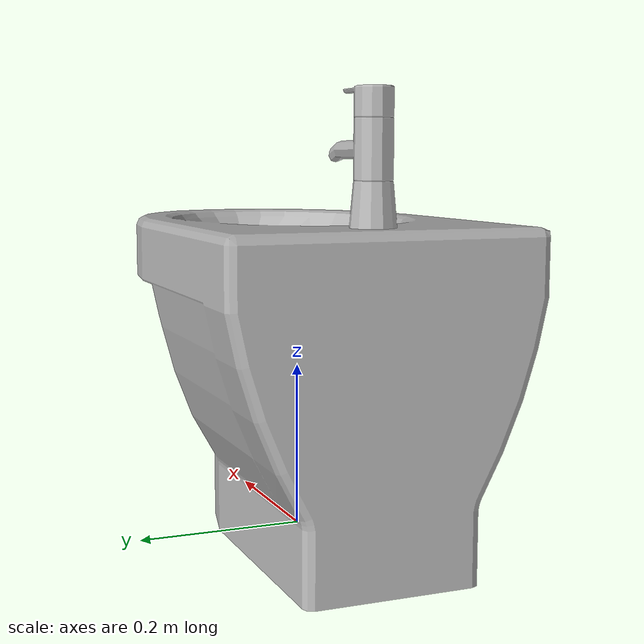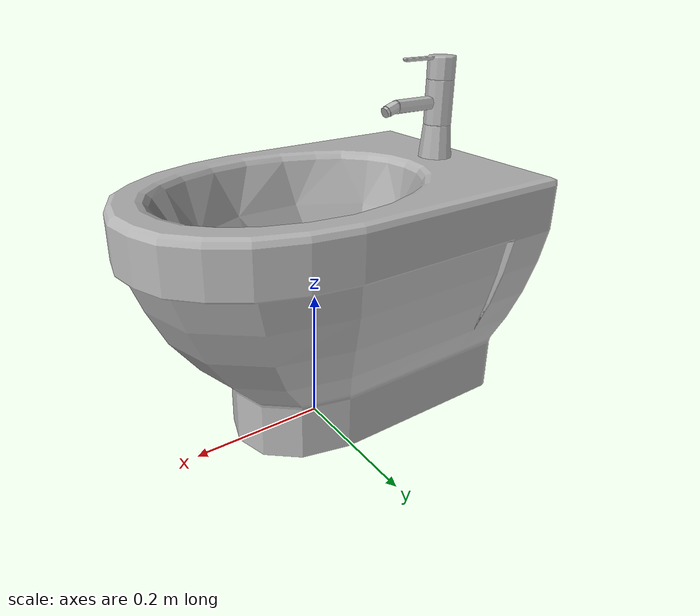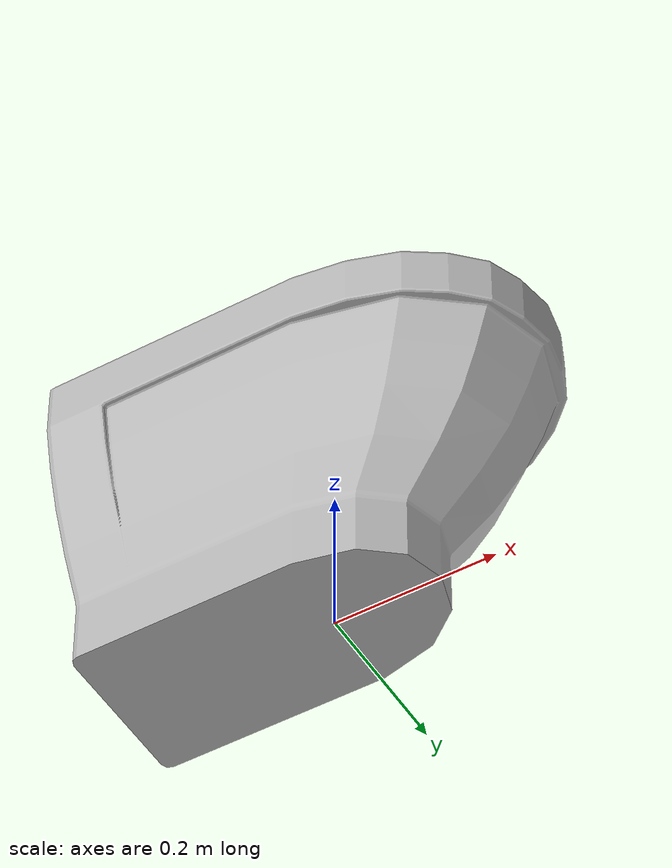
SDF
<?xml version='1.0'?>
<sdf version='1.4'>
  <model name='s__1138'>
    <pose>0 0 0 0 0 0</pose>
    <static>true</static>
    <link name='link'>
      <collision name='collision'>
        <pose>0 0 0 0 0 0</pose>
        <geometry>
          <box>
            <size>0.56 0.36 2</size>
          </box>
        </geometry>
      </collision>
      <visual name='visual'>
        <pose>0 0 0 0 0 0</pose>
        <geometry>
          <mesh><uri>model://s__1138/s__1138.dae</uri></mesh>
        </geometry>
      </visual>
    </link>
  </model>
</sdf>
